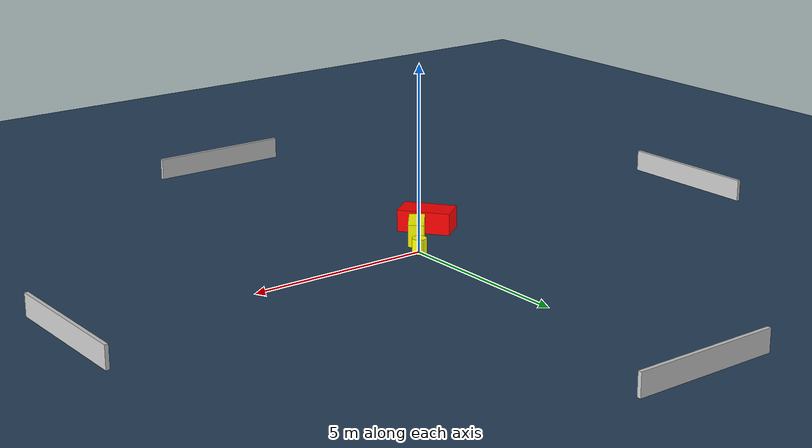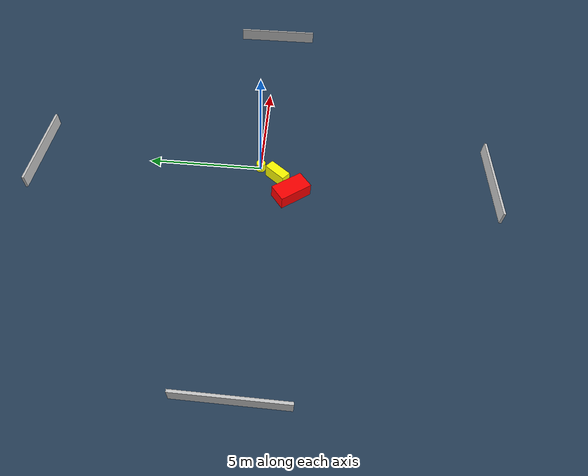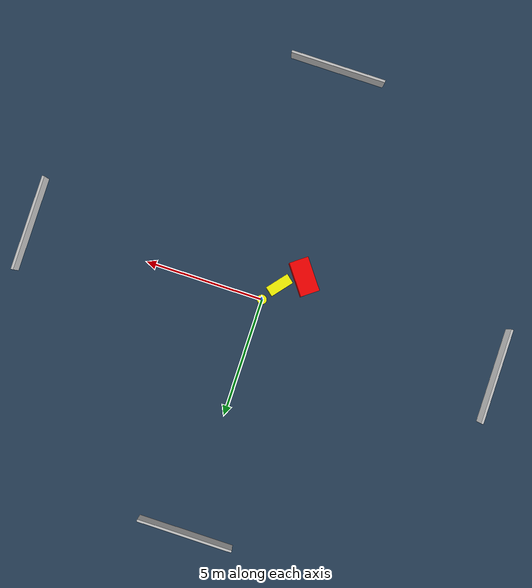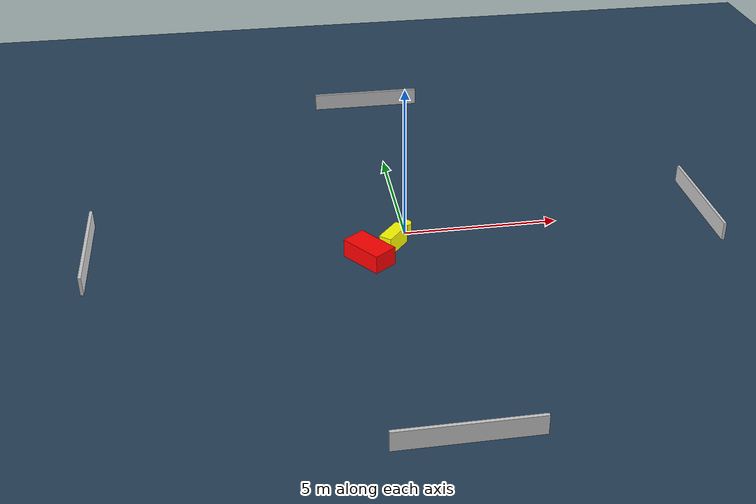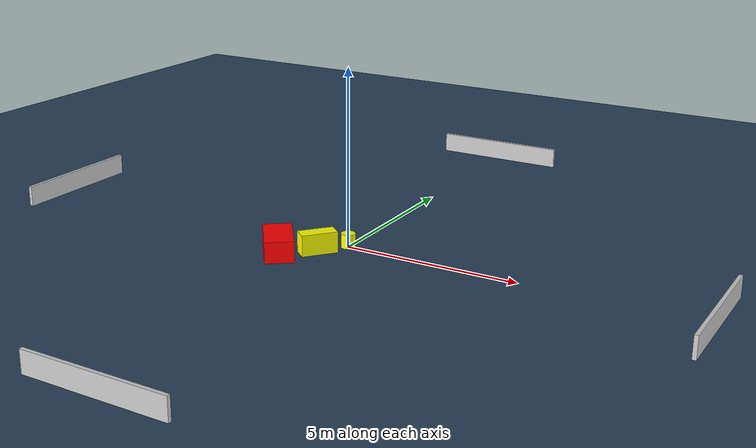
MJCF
<?xml version="1.0" ?>
<mujoco model="generated_environment">
  <option timestep="0.01" integrator="RK4" cone="elliptic"/>
  <default>
    <geom density="1"/>
  </default>
  <asset>
    <texture builtin="gradient" height="3072" name="skybox" rgb1="0.3 0.5 0.7" rgb2="0 0 0" type="skybox" width="512"/>
    <texture builtin="checker" height="300" name="groundplane" rgb1="0.2 0.3 0.4" rgb2="0.1 0.2 0.3" type="2d" width="300"/>
    <material name="groundplane" reflectance="0.2" texrepeat="5 5" texture="groundplane"/>
  </asset>
  <worldbody>
    <light dir="0 0 -1" directional="true" pos="0 0 1.5"/>
    <geom condim="3" friction="0.5 0.005 0.001" material="groundplane" name="floor" pos="0 0 0" size="0 0 0.05" type="plane"/>
    <body name="walls">
      <geom name="wall_1" condim="4" pos="-10.0 0.0 0.3" rgba="0.800000011920929 0.800000011920929 0.800000011920929 1.0" size="0.05 2.0 0.3" type="box"/>
      <geom name="wall_2" condim="4" pos="10.0 0.0 0.3" rgba="0.800000011920929 0.800000011920929 0.800000011920929 1.0" size="0.05 2.0 0.3" type="box"/>
      <geom name="wall_3" condim="4" pos="0.0 -10.0 0.3" rgba="0.800000011920929 0.800000011920929 0.800000011920929 1.0" size="2.0 0.05 0.3" type="box"/>
      <geom name="wall_4" condim="4" pos="0.0 10.0 0.3" rgba="0.800000011920929 0.800000011920929 0.800000011920929 1.0" size="2.0 0.05 0.3" type="box"/>
    </body>
    <body name="robot">
      <joint name="joint_x" type="slide" pos="0 0 0" axis="1 0 0"/>
      <joint name="joint_y" type="slide" pos="0 0 0" axis="0 1 0"/>
      <geom name="robot" type="cylinder" pos="0.0 0.0 0.2" size="0.2 0.2 0.0" mass="5.0" friction="1.0 0.005 0.0001" condim="4" rgba="1.0 1.0 0.0 1.0"/>
    </body>
    <body name="obstacle_1_movable">
      <geom name="obstacle_1_movable" condim="4" pos="-0.49729761362612573 -0.7696646506732373 0.3" euler="0 0 140.57766680014078" friction="0.0 0.005 0.001" rgba="1.0 1.0 0.0 1.0" size="0.21400519209951807 0.5097966211289302 0.3" type="box" mass="0.1"/>
      <joint type="free"/>
    </body>
    <body name="obstacle_2_static">
      <geom name="obstacle_2_static" condim="4" pos="-1.348340619023987 -1.409686007745266 0.3" euler="0 0 36.801230915801526" friction="0.0 0.005 0.001" rgba="1.0 0.0 0.0 1.0" size="0.4021881915988777 0.7251573146223234 0.3" type="box"/>
    </body>
  </worldbody>
  <actuator>
    <motor name="actuator_x" joint="joint_x" gear="1" ctrlrange="-1 1"/>
    <motor name="actuator_y" joint="joint_y" gear="1" ctrlrange="-1 1"/>
  </actuator>
</mujoco>
